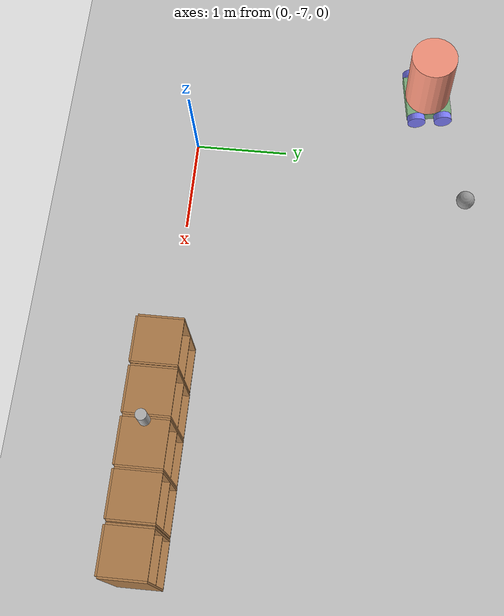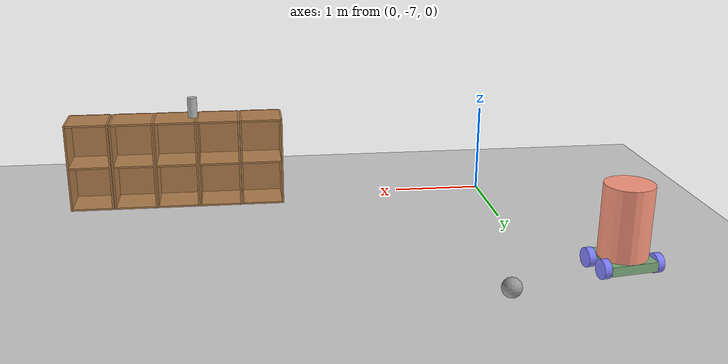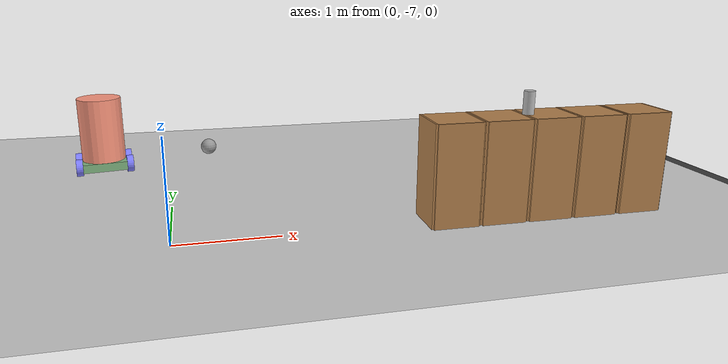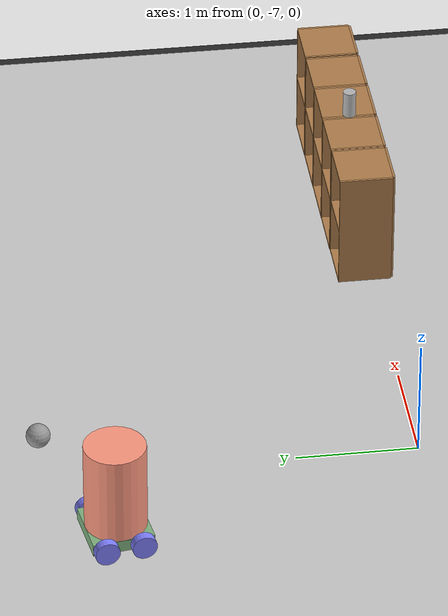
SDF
<sdf version="1.7">
 <world name="default">
  <model name="ground_plane">
   <static>1</static>
   <link name="link">
    <collision name="collision">
     <geometry><plane><normal>0 0 1</normal><size>100 100</size></plane></geometry>
     <surface>
      <contact><collide_bitmask>65535</collide_bitmask></contact>
      <friction><ode><mu>100</mu><mu2>50</mu2></ode></friction>
     </surface>
    </collision>
    <visual name="visual">
     <cast_shadows>0</cast_shadows>
     <geometry><plane><normal>0 0 1</normal><size>100 100</size></plane></geometry>
     <material>
      <script><uri>file://media/materials/scripts/gazebo.material</uri><name>Gazebo/Grey</name></script>
     </material>
    </visual>
   </link>
  </model>
  <model name="cabinet">
   <static>1</static>
   <link name="cabinet_bottom_plate">
    <inertial>
     <pose>0 0 -1 0 -0 0</pose>
     <inertia><ixx>2.05</ixx><ixy>0</ixy><ixz>0</ixz><iyy>2.05</iyy><iyz>0</iyz><izz>2.05</izz></inertia>
     <mass>25</mass>
    </inertial>
    <collision name="cabinet_bottom_plate_geom">
     <pose>0 0 0.01 0 -0 0</pose>
     <geometry><box><size>0.45 0.45 0.02</size></box></geometry>
    </collision>
    <visual name="cabinet_bottom_plate_geom_visual">
     <pose>0 0 0.01 0 -0 0</pose>
     <geometry><box><size>0.45 0.45 0.02</size></box></geometry>
     <material>
      <script><uri>file://media/materials/scripts/gazebo.material</uri><name>Gazebo/Wood</name></script>
     </material>
    </visual>
    <collision name="cabinet_bottom_plate_geom_cabinet_back_plate">
     <pose>0.235 0 0.51 0 -0 0</pose>
     <geometry><box><size>0.02 0.45 1.02</size></box></geometry>
    </collision>
    <visual name="cabinet_bottom_plate_geom_cabinet_back_plate_visual">
     <pose>0.235 0 0.51 0 -0 0</pose>
     <geometry><box><size>0.02 0.45 1.02</size></box></geometry>
     <material>
      <script><uri>file://media/materials/scripts/gazebo.material</uri><name>Gazebo/Wood</name></script>
     </material>
    </visual>
    <collision name="cabinet_bottom_plate_geom_cabinet_left_plate">
     <pose>0 0.235 0.51 0 -0 0</pose>
     <geometry><box><size>0.45 0.02 1.02</size></box></geometry>
    </collision>
    <visual name="cabinet_bottom_plate_geom_cabinet_left_plate_visual">
     <pose>0 0.235 0.51 0 -0 0</pose>
     <geometry><box><size>0.45 0.02 1.02</size></box></geometry>
     <material>
      <script><uri>file://media/materials/scripts/gazebo.material</uri><name>Gazebo/Wood</name></script>
     </material>
    </visual>
    <collision name="cabinet_bottom_plate_geom_cabinet_middle_plate">
     <pose>0 0 0.51 0 -0 0</pose>
     <geometry><box><size>0.45 0.45 0.02</size></box></geometry>
    </collision>
    <visual name="cabinet_bottom_plate_geom_cabinet_middle_plate_visual">
     <pose>0 0 0.51 0 -0 0</pose>
     <geometry><box><size>0.45 0.45 0.02</size></box></geometry>
     <material>
      <script><uri>file://media/materials/scripts/gazebo.material</uri><name>Gazebo/Wood</name></script>
     </material>
    </visual>
    <collision name="cabinet_bottom_plate_geom_cabinet_right_plate">
     <pose>0 -0.235 0.51 0 -0 0</pose>
     <geometry><box><size>0.45 0.02 1.02</size></box></geometry>
    </collision>
    <visual name="cabinet_bottom_plate_geom_cabinet_right_plate_visual">
     <pose>0 -0.235 0.51 0 -0 0</pose>
     <geometry><box><size>0.45 0.02 1.02</size></box></geometry>
     <material>
      <script><uri>file://media/materials/scripts/gazebo.material</uri><name>Gazebo/Wood</name></script>
     </material>
    </visual>
    <collision name="cabinet_bottom_plate_geom_cabinet_top_plate">
     <pose>0 0 1.01 0 -0 0</pose>
     <geometry><box><size>0.45 0.45 0.02</size></box></geometry>
    </collision>
    <visual name="cabinet_bottom_plate_geom_cabinet_top_plate_visual">
     <pose>0 0 1.01 0 -0 0</pose>
     <geometry><box><size>0.45 0.45 0.02</size></box></geometry>
     <material>
      <script><uri>file://media/materials/scripts/gazebo.material</uri><name>Gazebo/Wood</name></script>
     </material>
    </visual>
   </link>
   <pose>4.6119 -6.93625 0 0 0 -1.57282</pose>
  </model>
  <model name="beer">
   <link name="link">
    <pose>0 0 0.115 0 -0 0</pose>
    <inertial>
     <mass>0.39</mass>
     <inertia><ixx>0.00058</ixx><ixy>0</ixy><ixz>0</ixz><iyy>0.00058</iyy><iyz>0</iyz><izz>0.00019</izz></inertia>
    </inertial>
    <collision name="collision">
     <geometry><cylinder><radius>0.055</radius><length>0.23</length></cylinder></geometry>
    </collision>
    <visual name="visual">
     <geometry><cylinder><radius>0.055</radius><length>0.23</length></cylinder></geometry>
     <material>
      <script>
       <uri>model://beer/materials/scripts</uri>
       <uri>model://beer/materials/textures</uri>
       <name>Beer/Diffuse</name>
      </script>
     </material>
    </visual>
   </link>
   <pose>3.41977 -6.94915 1.02 2.2e-05 2.8e-05 0.000612</pose>
  </model>
  <model name="asphalt_plane">
   <static>1</static>
   <link name="link">
    <collision name="collision"><geometry><box><size>7.18921 20 0.1</size></box></geometry></collision>
    <visual name="visual">
     <cast_shadows>0</cast_shadows>
     <geometry><box><size>7.18921 20 0.1</size></box></geometry>
     <material>
      <script>
       <uri>model://asphalt_plane/materials/scripts</uri>
       <uri>model://asphalt_plane/materials/textures</uri>
       <name>vrc/asphalt</name>
      </script>
     </material>
    </visual>
   </link>
   <pose>13.9071 -0.010648 0 0 -0 0</pose>
  </model>
  <model name="cabinet_clone">
   <static>1</static>
   <link name="cabinet_bottom_plate">
    <inertial>
     <pose>0 0 -1 0 -0 0</pose>
     <inertia><ixx>2.05</ixx><ixy>0</ixy><ixz>0</ixz><iyy>2.05</iyy><iyz>0</iyz><izz>2.05</izz></inertia>
     <mass>25</mass>
    </inertial>
    <collision name="cabinet_bottom_plate_geom">
     <pose>0 0 0.01 0 -0 0</pose>
     <geometry><box><size>0.45 0.45 0.02</size></box></geometry>
    </collision>
    <visual name="cabinet_bottom_plate_geom_visual">
     <pose>0 0 0.01 0 -0 0</pose>
     <geometry><box><size>0.45 0.45 0.02</size></box></geometry>
     <material>
      <script><uri>file://media/materials/scripts/gazebo.material</uri><name>Gazebo/Wood</name></script>
     </material>
    </visual>
    <collision name="cabinet_bottom_plate_geom_cabinet_back_plate">
     <pose>0.235 0 0.51 0 -0 0</pose>
     <geometry><box><size>0.02 0.45 1.02</size></box></geometry>
    </collision>
    <visual name="cabinet_bottom_plate_geom_cabinet_back_plate_visual">
     <pose>0.235 0 0.51 0 -0 0</pose>
     <geometry><box><size>0.02 0.45 1.02</size></box></geometry>
     <material>
      <script><uri>file://media/materials/scripts/gazebo.material</uri><name>Gazebo/Wood</name></script>
     </material>
    </visual>
    <collision name="cabinet_bottom_plate_geom_cabinet_left_plate">
     <pose>0 0.235 0.51 0 -0 0</pose>
     <geometry><box><size>0.45 0.02 1.02</size></box></geometry>
    </collision>
    <visual name="cabinet_bottom_plate_geom_cabinet_left_plate_visual">
     <pose>0 0.235 0.51 0 -0 0</pose>
     <geometry><box><size>0.45 0.02 1.02</size></box></geometry>
     <material>
      <script><uri>file://media/materials/scripts/gazebo.material</uri><name>Gazebo/Wood</name></script>
     </material>
    </visual>
    <collision name="cabinet_bottom_plate_geom_cabinet_middle_plate">
     <pose>0 0 0.51 0 -0 0</pose>
     <geometry><box><size>0.45 0.45 0.02</size></box></geometry>
    </collision>
    <visual name="cabinet_bottom_plate_geom_cabinet_middle_plate_visual">
     <pose>0 0 0.51 0 -0 0</pose>
     <geometry><box><size>0.45 0.45 0.02</size></box></geometry>
     <material>
      <script><uri>file://media/materials/scripts/gazebo.material</uri><name>Gazebo/Wood</name></script>
     </material>
    </visual>
    <collision name="cabinet_bottom_plate_geom_cabinet_right_plate">
     <pose>0 -0.235 0.51 0 -0 0</pose>
     <geometry><box><size>0.45 0.02 1.02</size></box></geometry>
    </collision>
    <visual name="cabinet_bottom_plate_geom_cabinet_right_plate_visual">
     <pose>0 -0.235 0.51 0 -0 0</pose>
     <geometry><box><size>0.45 0.02 1.02</size></box></geometry>
     <material>
      <script><uri>file://media/materials/scripts/gazebo.material</uri><name>Gazebo/Wood</name></script>
     </material>
    </visual>
    <collision name="cabinet_bottom_plate_geom_cabinet_top_plate">
     <pose>0 0 1.01 0 -0 0</pose>
     <geometry><box><size>0.45 0.45 0.02</size></box></geometry>
    </collision>
    <visual name="cabinet_bottom_plate_geom_cabinet_top_plate_visual">
     <pose>0 0 1.01 0 -0 0</pose>
     <geometry><box><size>0.45 0.45 0.02</size></box></geometry>
     <material>
      <script><uri>file://media/materials/scripts/gazebo.material</uri><name>Gazebo/Wood</name></script>
     </material>
    </visual>
   </link>
   <pose>4.11248 -6.9371 0 0 0 -1.57282</pose>
  </model>
  <model name="cabinet_clone_clone">
   <static>1</static>
   <link name="cabinet_bottom_plate">
    <inertial>
     <pose>0 0 -1 0 -0 0</pose>
     <inertia><ixx>2.05</ixx><ixy>0</ixy><ixz>0</ixz><iyy>2.05</iyy><iyz>0</iyz><izz>2.05</izz></inertia>
     <mass>25</mass>
    </inertial>
    <collision name="cabinet_bottom_plate_geom">
     <pose>0 0 0.01 0 -0 0</pose>
     <geometry><box><size>0.45 0.45 0.02</size></box></geometry>
    </collision>
    <visual name="cabinet_bottom_plate_geom_visual">
     <pose>0 0 0.01 0 -0 0</pose>
     <geometry><box><size>0.45 0.45 0.02</size></box></geometry>
     <material>
      <script><uri>file://media/materials/scripts/gazebo.material</uri><name>Gazebo/Wood</name></script>
     </material>
    </visual>
    <collision name="cabinet_bottom_plate_geom_cabinet_back_plate">
     <pose>0.235 0 0.51 0 -0 0</pose>
     <geometry><box><size>0.02 0.45 1.02</size></box></geometry>
    </collision>
    <visual name="cabinet_bottom_plate_geom_cabinet_back_plate_visual">
     <pose>0.235 0 0.51 0 -0 0</pose>
     <geometry><box><size>0.02 0.45 1.02</size></box></geometry>
     <material>
      <script><uri>file://media/materials/scripts/gazebo.material</uri><name>Gazebo/Wood</name></script>
     </material>
    </visual>
    <collision name="cabinet_bottom_plate_geom_cabinet_left_plate">
     <pose>0 0.235 0.51 0 -0 0</pose>
     <geometry><box><size>0.45 0.02 1.02</size></box></geometry>
    </collision>
    <visual name="cabinet_bottom_plate_geom_cabinet_left_plate_visual">
     <pose>0 0.235 0.51 0 -0 0</pose>
     <geometry><box><size>0.45 0.02 1.02</size></box></geometry>
     <material>
      <script><uri>file://media/materials/scripts/gazebo.material</uri><name>Gazebo/Wood</name></script>
     </material>
    </visual>
    <collision name="cabinet_bottom_plate_geom_cabinet_middle_plate">
     <pose>0 0 0.51 0 -0 0</pose>
     <geometry><box><size>0.45 0.45 0.02</size></box></geometry>
    </collision>
    <visual name="cabinet_bottom_plate_geom_cabinet_middle_plate_visual">
     <pose>0 0 0.51 0 -0 0</pose>
     <geometry><box><size>0.45 0.45 0.02</size></box></geometry>
     <material>
      <script><uri>file://media/materials/scripts/gazebo.material</uri><name>Gazebo/Wood</name></script>
     </material>
    </visual>
    <collision name="cabinet_bottom_plate_geom_cabinet_right_plate">
     <pose>0 -0.235 0.51 0 -0 0</pose>
     <geometry><box><size>0.45 0.02 1.02</size></box></geometry>
    </collision>
    <visual name="cabinet_bottom_plate_geom_cabinet_right_plate_visual">
     <pose>0 -0.235 0.51 0 -0 0</pose>
     <geometry><box><size>0.45 0.02 1.02</size></box></geometry>
     <material>
      <script><uri>file://media/materials/scripts/gazebo.material</uri><name>Gazebo/Wood</name></script>
     </material>
    </visual>
    <collision name="cabinet_bottom_plate_geom_cabinet_top_plate">
     <pose>0 0 1.01 0 -0 0</pose>
     <geometry><box><size>0.45 0.45 0.02</size></box></geometry>
    </collision>
    <visual name="cabinet_bottom_plate_geom_cabinet_top_plate_visual">
     <pose>0 0 1.01 0 -0 0</pose>
     <geometry><box><size>0.45 0.45 0.02</size></box></geometry>
     <material>
      <script><uri>file://media/materials/scripts/gazebo.material</uri><name>Gazebo/Wood</name></script>
     </material>
    </visual>
   </link>
   <pose>3.62409 -6.93787 0 0 0 -1.57282</pose>
  </model>
  <model name="cabinet_clone_clone_clone">
   <static>1</static>
   <link name="cabinet_bottom_plate">
    <inertial>
     <pose>0 0 -1 0 -0 0</pose>
     <inertia><ixx>2.05</ixx><ixy>0</ixy><ixz>0</ixz><iyy>2.05</iyy><iyz>0</iyz><izz>2.05</izz></inertia>
     <mass>25</mass>
    </inertial>
    <collision name="cabinet_bottom_plate_geom">
     <pose>0 0 0.01 0 -0 0</pose>
     <geometry><box><size>0.45 0.45 0.02</size></box></geometry>
    </collision>
    <visual name="cabinet_bottom_plate_geom_visual">
     <pose>0 0 0.01 0 -0 0</pose>
     <geometry><box><size>0.45 0.45 0.02</size></box></geometry>
     <material>
      <script><uri>file://media/materials/scripts/gazebo.material</uri><name>Gazebo/Wood</name></script>
     </material>
    </visual>
    <collision name="cabinet_bottom_plate_geom_cabinet_back_plate">
     <pose>0.235 0 0.51 0 -0 0</pose>
     <geometry><box><size>0.02 0.45 1.02</size></box></geometry>
    </collision>
    <visual name="cabinet_bottom_plate_geom_cabinet_back_plate_visual">
     <pose>0.235 0 0.51 0 -0 0</pose>
     <geometry><box><size>0.02 0.45 1.02</size></box></geometry>
     <material>
      <script><uri>file://media/materials/scripts/gazebo.material</uri><name>Gazebo/Wood</name></script>
     </material>
    </visual>
    <collision name="cabinet_bottom_plate_geom_cabinet_left_plate">
     <pose>0 0.235 0.51 0 -0 0</pose>
     <geometry><box><size>0.45 0.02 1.02</size></box></geometry>
    </collision>
    <visual name="cabinet_bottom_plate_geom_cabinet_left_plate_visual">
     <pose>0 0.235 0.51 0 -0 0</pose>
     <geometry><box><size>0.45 0.02 1.02</size></box></geometry>
     <material>
      <script><uri>file://media/materials/scripts/gazebo.material</uri><name>Gazebo/Wood</name></script>
     </material>
    </visual>
    <collision name="cabinet_bottom_plate_geom_cabinet_middle_plate">
     <pose>0 0 0.51 0 -0 0</pose>
     <geometry><box><size>0.45 0.45 0.02</size></box></geometry>
    </collision>
    <visual name="cabinet_bottom_plate_geom_cabinet_middle_plate_visual">
     <pose>0 0 0.51 0 -0 0</pose>
     <geometry><box><size>0.45 0.45 0.02</size></box></geometry>
     <material>
      <script><uri>file://media/materials/scripts/gazebo.material</uri><name>Gazebo/Wood</name></script>
     </material>
    </visual>
    <collision name="cabinet_bottom_plate_geom_cabinet_right_plate">
     <pose>0 -0.235 0.51 0 -0 0</pose>
     <geometry><box><size>0.45 0.02 1.02</size></box></geometry>
    </collision>
    <visual name="cabinet_bottom_plate_geom_cabinet_right_plate_visual">
     <pose>0 -0.235 0.51 0 -0 0</pose>
     <geometry><box><size>0.45 0.02 1.02</size></box></geometry>
     <material>
      <script><uri>file://media/materials/scripts/gazebo.material</uri><name>Gazebo/Wood</name></script>
     </material>
    </visual>
    <collision name="cabinet_bottom_plate_geom_cabinet_top_plate">
     <pose>0 0 1.01 0 -0 0</pose>
     <geometry><box><size>0.45 0.45 0.02</size></box></geometry>
    </collision>
    <visual name="cabinet_bottom_plate_geom_cabinet_top_plate_visual">
     <pose>0 0 1.01 0 -0 0</pose>
     <geometry><box><size>0.45 0.45 0.02</size></box></geometry>
     <material>
      <script><uri>file://media/materials/scripts/gazebo.material</uri><name>Gazebo/Wood</name></script>
     </material>
    </visual>
   </link>
   <pose>3.13383 -6.93787 0 0 0 -1.57282</pose>
  </model>
  <model name="cabinet_clone_clone_clone_0">
   <static>1</static>
   <link name="cabinet_bottom_plate">
    <inertial>
     <pose>0 0 -1 0 -0 0</pose>
     <inertia><ixx>2.05</ixx><ixy>0</ixy><ixz>0</ixz><iyy>2.05</iyy><iyz>0</iyz><izz>2.05</izz></inertia>
     <mass>25</mass>
    </inertial>
    <collision name="cabinet_bottom_plate_geom">
     <pose>0 0 0.01 0 -0 0</pose>
     <geometry><box><size>0.45 0.45 0.02</size></box></geometry>
    </collision>
    <visual name="cabinet_bottom_plate_geom_visual">
     <pose>0 0 0.01 0 -0 0</pose>
     <geometry><box><size>0.45 0.45 0.02</size></box></geometry>
     <material>
      <script><uri>file://media/materials/scripts/gazebo.material</uri><name>Gazebo/Wood</name></script>
     </material>
    </visual>
    <collision name="cabinet_bottom_plate_geom_cabinet_back_plate">
     <pose>0.235 0 0.51 0 -0 0</pose>
     <geometry><box><size>0.02 0.45 1.02</size></box></geometry>
    </collision>
    <visual name="cabinet_bottom_plate_geom_cabinet_back_plate_visual">
     <pose>0.235 0 0.51 0 -0 0</pose>
     <geometry><box><size>0.02 0.45 1.02</size></box></geometry>
     <material>
      <script><uri>file://media/materials/scripts/gazebo.material</uri><name>Gazebo/Wood</name></script>
     </material>
    </visual>
    <collision name="cabinet_bottom_plate_geom_cabinet_left_plate">
     <pose>0 0.235 0.51 0 -0 0</pose>
     <geometry><box><size>0.45 0.02 1.02</size></box></geometry>
    </collision>
    <visual name="cabinet_bottom_plate_geom_cabinet_left_plate_visual">
     <pose>0 0.235 0.51 0 -0 0</pose>
     <geometry><box><size>0.45 0.02 1.02</size></box></geometry>
     <material>
      <script><uri>file://media/materials/scripts/gazebo.material</uri><name>Gazebo/Wood</name></script>
     </material>
    </visual>
    <collision name="cabinet_bottom_plate_geom_cabinet_middle_plate">
     <pose>0 0 0.51 0 -0 0</pose>
     <geometry><box><size>0.45 0.45 0.02</size></box></geometry>
    </collision>
    <visual name="cabinet_bottom_plate_geom_cabinet_middle_plate_visual">
     <pose>0 0 0.51 0 -0 0</pose>
     <geometry><box><size>0.45 0.45 0.02</size></box></geometry>
     <material>
      <script><uri>file://media/materials/scripts/gazebo.material</uri><name>Gazebo/Wood</name></script>
     </material>
    </visual>
    <collision name="cabinet_bottom_plate_geom_cabinet_right_plate">
     <pose>0 -0.235 0.51 0 -0 0</pose>
     <geometry><box><size>0.45 0.02 1.02</size></box></geometry>
    </collision>
    <visual name="cabinet_bottom_plate_geom_cabinet_right_plate_visual">
     <pose>0 -0.235 0.51 0 -0 0</pose>
     <geometry><box><size>0.45 0.02 1.02</size></box></geometry>
     <material>
      <script><uri>file://media/materials/scripts/gazebo.material</uri><name>Gazebo/Wood</name></script>
     </material>
    </visual>
    <collision name="cabinet_bottom_plate_geom_cabinet_top_plate">
     <pose>0 0 1.01 0 -0 0</pose>
     <geometry><box><size>0.45 0.45 0.02</size></box></geometry>
    </collision>
    <visual name="cabinet_bottom_plate_geom_cabinet_top_plate_visual">
     <pose>0 0 1.01 0 -0 0</pose>
     <geometry><box><size>0.45 0.45 0.02</size></box></geometry>
     <material>
      <script><uri>file://media/materials/scripts/gazebo.material</uri><name>Gazebo/Wood</name></script>
     </material>
    </visual>
   </link>
   <pose>2.64131 -6.94051 0 0 0 -1.57282</pose>
  </model>
  <model name="ServiceRobot">
   <link name="link_0">
    <inertial>
     <mass>5</mass>
     <inertia>
      <ixx>0.108333</ixx>
      <ixy>0</ixy>
      <ixz>0</ixz>
      <iyy>0.108333</iyy>
      <iyz>0</iyz>
      <izz>0.208333</izz>
     </inertia>
    </inertial>
    <pose>0 1e-06 -0.062498 0 -0 0</pose>
    <visual name="visual">
     <geometry><box><size>0.5 0.5 0.1</size></box></geometry>
     <material>
      <lighting>1</lighting>
      <script><uri>file://media/materials/scripts/gazebo.material</uri><name>Gazebo/Grey</name></script>
      <shader type="pixel"><normal_map>__default__</normal_map></shader>
      <ambient>0.3 1 0.3 1</ambient>
      <diffuse>0.5 0.7 0.5 1</diffuse>
      <specular>0.01 0.01 0.01 1</specular>
      <emissive>0 0 0 1</emissive>
     </material>
    </visual>
    <collision name="collision">
     <geometry><box><size>0.5 0.5 0.1</size></box></geometry>
     <surface>
      <friction>
       <ode><mu>1</mu><mu2>1</mu2><fdir1>0 0 0</fdir1><slip1>0</slip1><slip2>0</slip2></ode>
       <torsional>
        <coefficient>1</coefficient>
        <patch_radius>0</patch_radius>
        <surface_radius>0</surface_radius>
        <use_patch_radius>1</use_patch_radius>
        <ode><slip>0</slip></ode>
       </torsional>
      </friction>
      <bounce><restitution_coefficient>0</restitution_coefficient><threshold>1e+06</threshold></bounce>
      <contact>
       <collide_without_contact>0</collide_without_contact>
       <collide_without_contact_bitmask>1</collide_without_contact_bitmask>
       <collide_bitmask>1</collide_bitmask>
       <ode>
        <soft_cfm>0</soft_cfm>
        <soft_erp>0.2</soft_erp>
        <kp>1e+13</kp>
        <kd>1</kd>
        <max_vel>0.01</max_vel>
        <min_depth>0</min_depth>
       </ode>
       <bullet>
        <split_impulse>1</split_impulse>
        <split_impulse_penetration_threshold>-0.01</split_impulse_penetration_threshold>
        <soft_cfm>0</soft_cfm>
        <soft_erp>0.2</soft_erp>
        <kp>1e+13</kp>
        <kd>1</kd>
       </bullet>
      </contact>
     </surface>
    </collision>
   </link>
   <link name="link_1">
    <inertial>
     <mass>5</mass>
     <inertia><ixx>0.729167</ixx><ixy>0</ixy><ixz>0</ixz><iyy>0.729167</iyy><iyz>0</iyz><izz>0.625</izz></inertia>
    </inertial>
    <pose>0 1e-06 0.312502 0 -0 0</pose>
    <visual name="visual">
     <geometry><cylinder><radius>0.25</radius><length>0.85</length></cylinder></geometry>
     <material>
      <lighting>1</lighting>
      <script><uri>file://media/materials/scripts/gazebo.material</uri><name>Gazebo/Grey</name></script>
      <shader type="pixel"><normal_map>__default__</normal_map></shader>
      <ambient>1 0.3 0.3 1</ambient>
      <diffuse>1 0.6 0.5 1</diffuse>
      <specular>0.01 0.01 0.01 1</specular>
      <emissive>0 0 0 1</emissive>
     </material>
    </visual>
    <collision name="collision">
     <geometry><cylinder><radius>0.25</radius><length>0.85</length></cylinder></geometry>
     <surface>
      <friction>
       <ode><mu>1</mu><mu2>1</mu2><fdir1>0 0 0</fdir1><slip1>0</slip1><slip2>0</slip2></ode>
       <torsional>
        <coefficient>1</coefficient>
        <patch_radius>0</patch_radius>
        <surface_radius>0</surface_radius>
        <use_patch_radius>1</use_patch_radius>
        <ode><slip>0</slip></ode>
       </torsional>
      </friction>
      <bounce><restitution_coefficient>0</restitution_coefficient><threshold>1e+06</threshold></bounce>
      <contact>
       <collide_without_contact>0</collide_without_contact>
       <collide_without_contact_bitmask>1</collide_without_contact_bitmask>
       <collide_bitmask>1</collide_bitmask>
       <ode>
        <soft_cfm>0</soft_cfm>
        <soft_erp>0.2</soft_erp>
        <kp>1e+13</kp>
        <kd>1</kd>
        <max_vel>0.01</max_vel>
        <min_depth>0</min_depth>
       </ode>
       <bullet>
        <split_impulse>1</split_impulse>
        <split_impulse_penetration_threshold>-0.01</split_impulse_penetration_threshold>
        <soft_cfm>0</soft_cfm>
        <soft_erp>0.2</soft_erp>
        <kp>1e+13</kp>
        <kd>1</kd>
       </bullet>
      </contact>
     </surface>
    </collision>
   </link>
   <link name="link_2">
    <inertial>
     <mass>1</mass>
     <inertia><ixx>0.145833</ixx><ixy>0</ixy><ixz>0</ixz><iyy>0.145833</iyy><iyz>0</iyz><izz>0.125</izz></inertia>
    </inertial>
    <pose>-0.15 -0.287513 -0.062511 1.5707 -0 0</pose>
    <visual name="visual">
     <geometry><cylinder><radius>0.1</radius><length>0.075</length></cylinder></geometry>
     <material>
      <lighting>1</lighting>
      <script><uri>file://media/materials/scripts/gazebo.material</uri><name>Gazebo/Grey</name></script>
      <shader type="pixel"><normal_map>__default__</normal_map></shader>
      <ambient>0.3 0.3 1 1</ambient>
      <diffuse>0.5 0.5 1 1</diffuse>
      <specular>0.01 0.01 0.01 1</specular>
      <emissive>0 0 0 1</emissive>
     </material>
    </visual>
    <collision name="collision">
     <geometry><cylinder><radius>0.1</radius><length>0.075</length></cylinder></geometry>
     <surface>
      <friction>
       <ode><mu>1</mu><mu2>1</mu2><fdir1>0 0 0</fdir1><slip1>0</slip1><slip2>0</slip2></ode>
       <torsional>
        <coefficient>1</coefficient>
        <patch_radius>0</patch_radius>
        <surface_radius>0</surface_radius>
        <use_patch_radius>1</use_patch_radius>
        <ode><slip>0</slip></ode>
       </torsional>
      </friction>
      <bounce><restitution_coefficient>0</restitution_coefficient><threshold>1e+06</threshold></bounce>
      <contact>
       <collide_without_contact>0</collide_without_contact>
       <collide_without_contact_bitmask>1</collide_without_contact_bitmask>
       <collide_bitmask>1</collide_bitmask>
       <ode>
        <soft_cfm>0</soft_cfm>
        <soft_erp>0.2</soft_erp>
        <kp>1e+13</kp>
        <kd>1</kd>
        <max_vel>0.01</max_vel>
        <min_depth>0</min_depth>
       </ode>
       <bullet>
        <split_impulse>1</split_impulse>
        <split_impulse_penetration_threshold>-0.01</split_impulse_penetration_threshold>
        <soft_cfm>0</soft_cfm>
        <soft_erp>0.2</soft_erp>
        <kp>1e+13</kp>
        <kd>1</kd>
       </bullet>
      </contact>
     </surface>
    </collision>
   </link>
   <link name="link_2_clone">
    <inertial>
     <mass>1</mass>
     <inertia><ixx>0.145833</ixx><ixy>0</ixy><ixz>0</ixz><iyy>0.145833</iyy><iyz>0</iyz><izz>0.125</izz></inertia>
    </inertial>
    <pose>0.15 -0.287509 -0.062498 1.5707 -0 0</pose>
    <visual name="visual">
     <geometry><cylinder><radius>0.1</radius><length>0.075</length></cylinder></geometry>
     <material>
      <lighting>1</lighting>
      <script><uri>file://media/materials/scripts/gazebo.material</uri><name>Gazebo/Grey</name></script>
      <shader type="pixel"><normal_map>__default__</normal_map></shader>
      <ambient>0.3 0.3 1 1</ambient>
      <diffuse>0.5 0.5 1 1</diffuse>
      <specular>0.01 0.01 0.01 1</specular>
      <emissive>0 0 0 1</emissive>
     </material>
    </visual>
    <collision name="collision">
     <geometry><cylinder><radius>0.1</radius><length>0.075</length></cylinder></geometry>
     <surface>
      <friction>
       <ode><mu>1</mu><mu2>1</mu2><fdir1>0 0 0</fdir1><slip1>0</slip1><slip2>0</slip2></ode>
       <torsional>
        <coefficient>1</coefficient>
        <patch_radius>0</patch_radius>
        <surface_radius>0</surface_radius>
        <use_patch_radius>1</use_patch_radius>
        <ode><slip>0</slip></ode>
       </torsional>
      </friction>
      <bounce><restitution_coefficient>0</restitution_coefficient><threshold>1e+06</threshold></bounce>
      <contact>
       <collide_without_contact>0</collide_without_contact>
       <collide_without_contact_bitmask>1</collide_without_contact_bitmask>
       <collide_bitmask>1</collide_bitmask>
       <ode>
        <soft_cfm>0</soft_cfm>
        <soft_erp>0.2</soft_erp>
        <kp>1e+13</kp>
        <kd>1</kd>
        <max_vel>0.01</max_vel>
        <min_depth>0</min_depth>
       </ode>
       <bullet>
        <split_impulse>1</split_impulse>
        <split_impulse_penetration_threshold>-0.01</split_impulse_penetration_threshold>
        <soft_cfm>0</soft_cfm>
        <soft_erp>0.2</soft_erp>
        <kp>1e+13</kp>
        <kd>1</kd>
       </bullet>
      </contact>
     </surface>
    </collision>
   </link>
   <link name="link_2_clone_0">
    <inertial>
     <mass>1</mass>
     <inertia><ixx>0.145833</ixx><ixy>0</ixy><ixz>0</ixz><iyy>0.145833</iyy><iyz>0</iyz><izz>0.125</izz></inertia>
    </inertial>
    <pose>0.15 0.28751 -0.062498 1.5707 -0 0</pose>
    <visual name="visual">
     <geometry><cylinder><radius>0.1</radius><length>0.075</length></cylinder></geometry>
     <material>
      <lighting>1</lighting>
      <script><uri>file://media/materials/scripts/gazebo.material</uri><name>Gazebo/Grey</name></script>
      <shader type="pixel"><normal_map>__default__</normal_map></shader>
      <ambient>0.3 0.3 1 1</ambient>
      <diffuse>0.5 0.5 1 1</diffuse>
      <specular>0.01 0.01 0.01 1</specular>
      <emissive>0 0 0 1</emissive>
     </material>
    </visual>
    <collision name="collision">
     <geometry><cylinder><radius>0.1</radius><length>0.075</length></cylinder></geometry>
     <surface>
      <friction>
       <ode><mu>1</mu><mu2>1</mu2><fdir1>0 0 0</fdir1><slip1>0</slip1><slip2>0</slip2></ode>
       <torsional>
        <coefficient>1</coefficient>
        <patch_radius>0</patch_radius>
        <surface_radius>0</surface_radius>
        <use_patch_radius>1</use_patch_radius>
        <ode><slip>0</slip></ode>
       </torsional>
      </friction>
      <bounce><restitution_coefficient>0</restitution_coefficient><threshold>1e+06</threshold></bounce>
      <contact>
       <collide_without_contact>0</collide_without_contact>
       <collide_without_contact_bitmask>1</collide_without_contact_bitmask>
       <collide_bitmask>1</collide_bitmask>
       <ode>
        <soft_cfm>0</soft_cfm>
        <soft_erp>0.2</soft_erp>
        <kp>1e+13</kp>
        <kd>1</kd>
        <max_vel>0.01</max_vel>
        <min_depth>0</min_depth>
       </ode>
       <bullet>
        <split_impulse>1</split_impulse>
        <split_impulse_penetration_threshold>-0.01</split_impulse_penetration_threshold>
        <soft_cfm>0</soft_cfm>
        <soft_erp>0.2</soft_erp>
        <kp>1e+13</kp>
        <kd>1</kd>
       </bullet>
      </contact>
     </surface>
    </collision>
   </link>
   <link name="link_2_clone_1">
    <inertial>
     <mass>1</mass>
     <inertia><ixx>0.145833</ixx><ixy>0</ixy><ixz>0</ixz><iyy>0.145833</iyy><iyz>0</iyz><izz>0.125</izz></inertia>
    </inertial>
    <pose>-0.15 0.28751 -0.062498 1.5707 -0 0</pose>
    <visual name="visual">
     <geometry><cylinder><radius>0.1</radius><length>0.075</length></cylinder></geometry>
     <material>
      <lighting>1</lighting>
      <script><uri>file://media/materials/scripts/gazebo.material</uri><name>Gazebo/Grey</name></script>
      <shader type="pixel"><normal_map>__default__</normal_map></shader>
      <ambient>0.3 0.3 1 1</ambient>
      <diffuse>0.5 0.5 1 1</diffuse>
      <specular>0.01 0.01 0.01 1</specular>
      <emissive>0 0 0 1</emissive>
     </material>
    </visual>
    <collision name="collision">
     <geometry><cylinder><radius>0.1</radius><length>0.075</length></cylinder></geometry>
     <surface>
      <friction>
       <ode><mu>1</mu><mu2>1</mu2><fdir1>0 0 0</fdir1><slip1>0</slip1><slip2>0</slip2></ode>
       <torsional>
        <coefficient>1</coefficient>
        <patch_radius>0</patch_radius>
        <surface_radius>0</surface_radius>
        <use_patch_radius>1</use_patch_radius>
        <ode><slip>0</slip></ode>
       </torsional>
      </friction>
      <bounce><restitution_coefficient>0</restitution_coefficient><threshold>1e+06</threshold></bounce>
      <contact>
       <collide_without_contact>0</collide_without_contact>
       <collide_without_contact_bitmask>1</collide_without_contact_bitmask>
       <collide_bitmask>1</collide_bitmask>
       <ode>
        <soft_cfm>0</soft_cfm>
        <soft_erp>0.2</soft_erp>
        <kp>1e+13</kp>
        <kd>1</kd>
        <max_vel>0.01</max_vel>
        <min_depth>0</min_depth>
       </ode>
       <bullet>
        <split_impulse>1</split_impulse>
        <split_impulse_penetration_threshold>-0.01</split_impulse_penetration_threshold>
        <soft_cfm>0</soft_cfm>
        <soft_erp>0.2</soft_erp>
        <kp>1e+13</kp>
        <kd>1</kd>
       </bullet>
      </contact>
     </surface>
    </collision>
   </link>
   <joint name="link_0_JOINT_0" type="fixed">
    <parent>link_0</parent>
    <child>link_1</child>
    <physics>
     <ode><limit><cfm>0</cfm><erp>0.2</erp></limit><suspension><cfm>0</cfm><erp>0.2</erp></suspension></ode>
    </physics>
   </joint>
   <joint name="link_0_JOINT_1" type="revolute">
    <parent>link_0</parent>
    <child>link_2</child>
    <axis>
     <xyz>0 0 1</xyz>
     <limit>
      <lower>-1.79769e+308</lower>
      <upper>1.79769e+308</upper>
      <effort>-1</effort>
      <velocity>-1</velocity>
     </limit>
     <dynamics>
      <spring_reference>0</spring_reference>
      <spring_stiffness>0</spring_stiffness>
      <damping>0</damping>
      <friction>0</friction>
     </dynamics>
    </axis>
    <physics>
     <ode><limit><cfm>0</cfm><erp>0.2</erp></limit><suspension><cfm>0</cfm><erp>0.2</erp></suspension></ode>
    </physics>
   </joint>
   <joint name="link_0_JOINT_4" type="revolute">
    <parent>link_0</parent>
    <child>link_2_clone</child>
    <axis>
     <xyz>0 0 1</xyz>
     <limit>
      <lower>-1.79769e+308</lower>
      <upper>1.79769e+308</upper>
      <effort>-1</effort>
      <velocity>-1</velocity>
     </limit>
     <dynamics>
      <spring_reference>0</spring_reference>
      <spring_stiffness>0</spring_stiffness>
      <damping>0</damping>
      <friction>0</friction>
     </dynamics>
    </axis>
    <physics>
     <ode><limit><cfm>0</cfm><erp>0.2</erp></limit><suspension><cfm>0</cfm><erp>0.2</erp></suspension></ode>
    </physics>
   </joint>
   <joint name="link_0_JOINT_5" type="revolute">
    <parent>link_0</parent>
    <child>link_2_clone_0</child>
    <axis>
     <xyz>-0 -0 -1</xyz>
     <limit>
      <lower>-1.79769e+308</lower>
      <upper>1.79769e+308</upper>
      <effort>-1</effort>
      <velocity>-1</velocity>
     </limit>
     <dynamics>
      <spring_reference>0</spring_reference>
      <spring_stiffness>0</spring_stiffness>
      <damping>0</damping>
      <friction>0</friction>
     </dynamics>
    </axis>
    <physics>
     <ode><limit><cfm>0</cfm><erp>0.2</erp></limit><suspension><cfm>0</cfm><erp>0.2</erp></suspension></ode>
    </physics>
   </joint>
   <joint name="link_0_JOINT_6" type="revolute">
    <parent>link_0</parent>
    <child>link_2_clone_1</child>
    <axis>
     <xyz>-0 -0 -1</xyz>
     <limit>
      <lower>-1.79769e+308</lower>
      <upper>1.79769e+308</upper>
      <effort>-1</effort>
      <velocity>-1</velocity>
     </limit>
     <dynamics>
      <spring_reference>0</spring_reference>
      <spring_stiffness>0</spring_stiffness>
      <damping>0</damping>
      <friction>0</friction>
     </dynamics>
    </axis>
    <physics>
     <ode><limit><cfm>0</cfm><erp>0.2</erp></limit><suspension><cfm>0</cfm><erp>0.2</erp></suspension></ode>
    </physics>
   </joint>
   <static>0</static>
   <pose>-0.822636 -4.45432 0.162504 3e-06 2.5e-05 -1.4183</pose>
  </model>
  <model name="my_ball">
   <link name="link_0">
    <inertial>
     <mass>1</mass>
     <inertia><ixx>0.1</ixx><ixy>0</ixy><ixz>0</ixz><iyy>0.1</iyy><iyz>0</iyz><izz>0.1</izz></inertia>
    </inertial>
    <visual name="visual">
     <geometry><sphere><radius>0.1</radius></sphere></geometry>
     <material>
      <lighting>1</lighting>
      <script><uri>file://media/materials/scripts/gazebo.material</uri><name>Gazebo/Grey</name></script>
      <shader type="pixel"><normal_map>__default__</normal_map></shader>
      <ambient>1 1 1 1</ambient>
      <diffuse>1 1 1 1</diffuse>
      <specular>1 1 1 1</specular>
      <emissive>1 1 1 1</emissive>
     </material>
    </visual>
    <collision name="collision">
     <geometry><sphere><radius>0.1</radius></sphere></geometry>
     <surface>
      <friction>
       <ode><mu>1</mu><mu2>1</mu2><fdir1>0 0 0</fdir1><slip1>0</slip1><slip2>0</slip2></ode>
       <torsional>
        <coefficient>1</coefficient>
        <patch_radius>0</patch_radius>
        <surface_radius>0</surface_radius>
        <use_patch_radius>1</use_patch_radius>
        <ode><slip>0</slip></ode>
       </torsional>
      </friction>
      <bounce><restitution_coefficient>0</restitution_coefficient><threshold>1e+06</threshold></bounce>
      <contact>
       <collide_without_contact>0</collide_without_contact>
       <collide_without_contact_bitmask>1</collide_without_contact_bitmask>
       <collide_bitmask>1</collide_bitmask>
       <ode>
        <soft_cfm>0</soft_cfm>
        <soft_erp>0.2</soft_erp>
        <kp>1e+13</kp>
        <kd>1</kd>
        <max_vel>0.01</max_vel>
        <min_depth>0</min_depth>
       </ode>
       <bullet>
        <split_impulse>1</split_impulse>
        <split_impulse_penetration_threshold>-0.01</split_impulse_penetration_threshold>
        <soft_cfm>0</soft_cfm>
        <soft_erp>0.2</soft_erp>
        <kp>1e+13</kp>
        <kd>1</kd>
       </bullet>
      </contact>
     </surface>
    </collision>
   </link>
   <static>0</static>
   <pose>0.44159 -3.96448 0.1 0 -0 0</pose>
  </model>
 </world>
</sdf>
